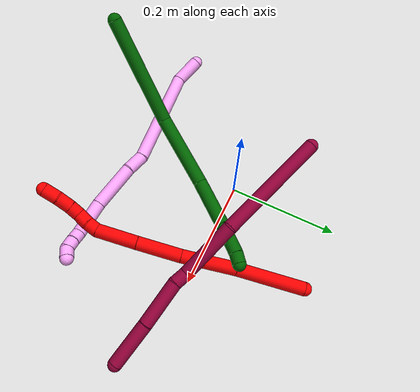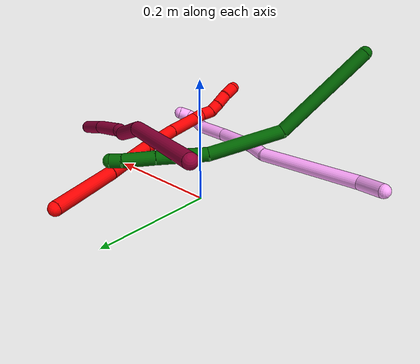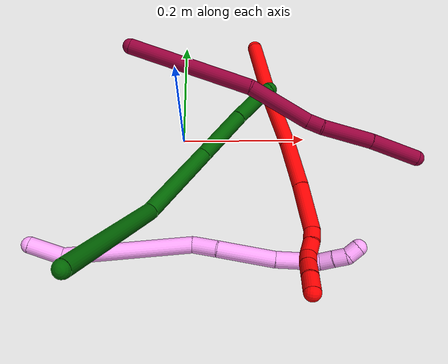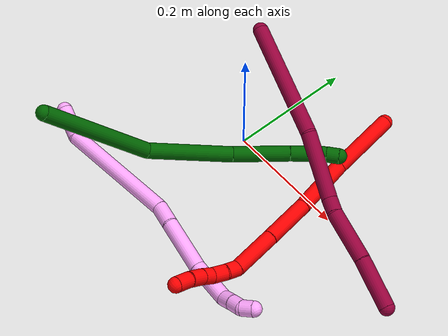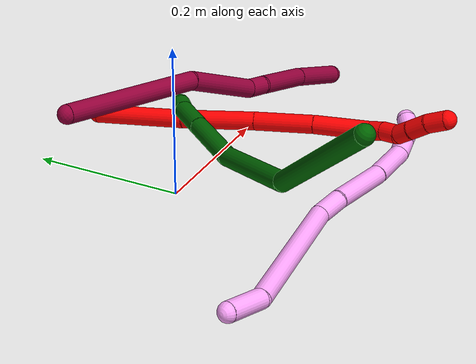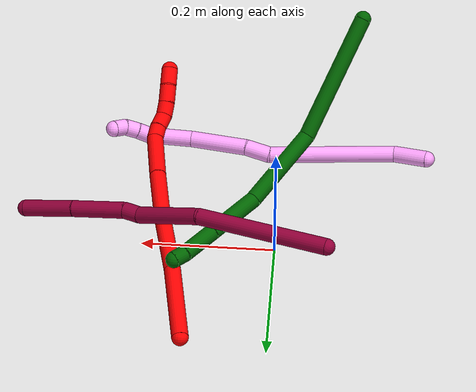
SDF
<sdf version="1.7">
 <world name="default">
  <model name="photoneo_s_sensor">
   <static>1</static>
   <pose>0 0 2 1.57079 1.57079 3.14159</pose>
   <link name="link">
    <inertial><mass>0.1</mass></inertial>
    <sensor name="sensor" type="depth">
     <update_rate>30</update_rate>
     <camera>
      <horizontal_fov>1.22</horizontal_fov>
      <image><width>1920</width><height>1200</height><format>B8G8R8</format></image>
      <clip><near>0.1</near><far>4</far></clip>
      <depth_camera><output>points</output></depth_camera>
     </camera>
     <plugin name="camera_plugin" filename="libgazebo_ros_depth_camera.so">
      <baseline>0.2</baseline>
      <alwaysOn>1</alwaysOn>
      <updateRate>0.0</updateRate>
      <cameraName>camera_ir</cameraName>
      <imageTopicName>/camera/color/image_raw</imageTopicName>
      <cameraInfoTopicName>/camera/color/camera_info</cameraInfoTopicName>
      <depthImageTopicName>/camera/depth/image_raw</depthImageTopicName>
      <depthImageCameraInfoTopicName>/camera/depth/camera_info</depthImageCameraInfoTopicName>
      <pointCloudTopicName>/camera/depth/points</pointCloudTopicName>
      <frameName>fr_optical</frameName>
      <pointCloudCutoff>0.1</pointCloudCutoff>
      <pointCloudCutoffMax>2.0</pointCloudCutoffMax>
      <distortionK1>0</distortionK1>
      <distortionK2>0</distortionK2>
      <distortionK3>0</distortionK3>
      <distortionT1>0</distortionT1>
      <distortionT2>0</distortionT2>
      <CxPrime>0</CxPrime>
      <Cx>0</Cx>
      <Cy>0</Cy>
      <focalLength>0</focalLength>
      <hackBaseline>0</hackBaseline>
     </plugin>
    </sensor>
   </link>
  </model>
  <model name="bin">
   <static>1</static>
   <link name="bottom">
    <collision name="collision-bottom">
     <pose>0 0 -0.01 0 -0 0</pose>
     <geometry><box><size>0.8 0.6 0.02</size></box></geometry>
     <surface>
      <friction><ode><mu>100</mu><mu2>100</mu2></ode></friction>
      <contact><collide_bitmask>65535</collide_bitmask></contact>
     </surface>
    </collision>
   </link>
   <link name="west_wall">
    <collision name="collision-west_wall">
     <pose>-0.41 0 0.1 0 -0 0</pose>
     <geometry><box><size>0.02 0.6 0.2</size></box></geometry>
     <surface>
      <friction><ode><mu>100</mu><mu2>100</mu2></ode></friction>
      <contact><collide_bitmask>65535</collide_bitmask></contact>
     </surface>
    </collision>
   </link>
   <link name="east_wall">
    <collision name="collision-east_wall">
     <pose>0.41 0 0.1 0 -0 0</pose>
     <geometry><box><size>0.02 0.6 0.2</size></box></geometry>
     <surface>
      <friction><ode><mu>100</mu><mu2>100</mu2></ode></friction>
      <contact><collide_bitmask>65535</collide_bitmask></contact>
     </surface>
    </collision>
   </link>
   <link name="south_wall">
    <collision name="collision-south_wall">
     <pose>0 -0.31 0.1 0 -0 0</pose>
     <geometry><box><size>0.8 0.02 0.2</size></box></geometry>
     <surface>
      <friction><ode><mu>100</mu><mu2>100</mu2></ode></friction>
      <contact><collide_bitmask>65535</collide_bitmask></contact>
     </surface>
    </collision>
   </link>
   <link name="north_wall">
    <collision name="collision-north_wall">
     <pose>0 0.31 0.1 0 -0 0</pose>
     <geometry><box><size>0.8 0.02 0.2</size></box></geometry>
     <surface>
      <friction><ode><mu>100</mu><mu2>100</mu2></ode></friction>
      <contact><collide_bitmask>65535</collide_bitmask></contact>
     </surface>
    </collision>
   </link>
  </model>
  <model name="2">
   <static>0</static>
   <link name="2">
    <collision name="collision-cylinder-e_1_1_4">
     <pose>0.000698 -0.058525 -0.019623 1.89431 0.011301 0.015709</pose>
     <geometry><cylinder><radius>0.0125</radius><length>0.123461</length></cylinder></geometry>
     <surface>
      <friction><ode><mu>1.16</mu><mu2>1.16</mu2><slip1>0</slip1><slip2>0</slip2></ode></friction>
      <contact><ode><kp>1e+06</kp><kd>1</kd><max_vel>0</max_vel><min_depth>0.001</min_depth></ode></contact>
     </surface>
    </collision>
    <visual name="visual-cylinder-e_1_1_4">
     <pose>0.000698 -0.058525 -0.019623 1.89431 0.011301 0.015709</pose>
     <geometry><cylinder><radius>0.0125</radius><length>0.123461</length></cylinder></geometry>
     <material><ambient>1 0 0 1</ambient></material>
    </visual>
    <collision name="collision-cylinder-e_2_4_5">
     <pose>0.002526 -0.163512 -0.058023 1.95486 0.022559 0.033446</pose>
     <geometry><cylinder><radius>0.0125</radius><length>0.100253</length></cylinder></geometry>
     <surface>
      <friction><ode><mu>1.16</mu><mu2>1.16</mu2><slip1>0</slip1><slip2>0</slip2></ode></friction>
      <contact><ode><kp>1e+06</kp><kd>1</kd><max_vel>0</max_vel><min_depth>0.001</min_depth></ode></contact>
     </surface>
    </collision>
    <visual name="visual-cylinder-e_2_4_5">
     <pose>0.002526 -0.163512 -0.058023 1.95486 0.022559 0.033446</pose>
     <geometry><cylinder><radius>0.0125</radius><length>0.100253</length></cylinder></geometry>
     <material><ambient>1 0 0 1</ambient></material>
    </visual>
    <collision name="collision-cylinder-e_3_5_6">
     <pose>0.004439 -0.248471 -0.089668 1.89338 0.019264 0.026751</pose>
     <geometry><cylinder><radius>0.0125</radius><length>0.081194</length></cylinder></geometry>
     <surface>
      <friction><ode><mu>1.16</mu><mu2>1.16</mu2><slip1>0</slip1><slip2>0</slip2></ode></friction>
      <contact><ode><kp>1e+06</kp><kd>1</kd><max_vel>0</max_vel><min_depth>0.001</min_depth></ode></contact>
     </surface>
    </collision>
    <visual name="visual-cylinder-e_3_5_6">
     <pose>0.004439 -0.248471 -0.089668 1.89338 0.019264 0.026751</pose>
     <geometry><cylinder><radius>0.0125</radius><length>0.081194</length></cylinder></geometry>
     <material><ambient>1 0 0 1</ambient></material>
    </visual>
    <collision name="collision-cylinder-e_4_6_7">
     <pose>0.00422 -0.323212 -0.113584 1.86669 -0.026402 -0.035647</pose>
     <geometry><cylinder><radius>0.0125</radius><length>0.07581</length></cylinder></geometry>
     <surface>
      <friction><ode><mu>1.16</mu><mu2>1.16</mu2><slip1>0</slip1><slip2>0</slip2></ode></friction>
      <contact><ode><kp>1e+06</kp><kd>1</kd><max_vel>0</max_vel><min_depth>0.001</min_depth></ode></contact>
     </surface>
    </collision>
    <visual name="visual-cylinder-e_4_6_7">
     <pose>0.00422 -0.323212 -0.113584 1.86669 -0.026402 -0.035647</pose>
     <geometry><cylinder><radius>0.0125</radius><length>0.07581</length></cylinder></geometry>
     <material><ambient>1 0 0 1</ambient></material>
    </visual>
    <collision name="collision-cylinder-e_5_7_8">
     <pose>0.00509 -0.369381 -0.124536 1.56101 0.18626 0.184456</pose>
     <geometry><cylinder><radius>0.0125</radius><length>0.020198</length></cylinder></geometry>
     <surface>
      <friction><ode><mu>1.16</mu><mu2>1.16</mu2><slip1>0</slip1><slip2>0</slip2></ode></friction>
      <contact><ode><kp>1e+06</kp><kd>1</kd><max_vel>0</max_vel><min_depth>0.001</min_depth></ode></contact>
     </surface>
    </collision>
    <visual name="visual-cylinder-e_5_7_8">
     <pose>0.00509 -0.369381 -0.124536 1.56101 0.18626 0.184456</pose>
     <geometry><cylinder><radius>0.0125</radius><length>0.020198</length></cylinder></geometry>
     <material><ambient>1 0 0 1</ambient></material>
    </visual>
    <collision name="collision-cylinder-e_6_8_9">
     <pose>0.007862 -0.390847 -0.122476 1.40233 0.076891 0.064927</pose>
     <geometry><cylinder><radius>0.0125</radius><length>0.023484</length></cylinder></geometry>
     <surface>
      <friction><ode><mu>1.16</mu><mu2>1.16</mu2><slip1>0</slip1><slip2>0</slip2></ode></friction>
      <contact><ode><kp>1e+06</kp><kd>1</kd><max_vel>0</max_vel><min_depth>0.001</min_depth></ode></contact>
     </surface>
    </collision>
    <visual name="visual-cylinder-e_6_8_9">
     <pose>0.007862 -0.390847 -0.122476 1.40233 0.076891 0.064927</pose>
     <geometry><cylinder><radius>0.0125</radius><length>0.023484</length></cylinder></geometry>
     <material><ambient>1 0 0 1</ambient></material>
    </visual>
    <collision name="collision-cylinder-e_7_9_10">
     <pose>0.013982 -0.411724 -0.120355 1.55391 0.509667 0.501486</pose>
     <geometry><cylinder><radius>0.0125</radius><length>0.021393</length></cylinder></geometry>
     <surface>
      <friction><ode><mu>1.16</mu><mu2>1.16</mu2><slip1>0</slip1><slip2>0</slip2></ode></friction>
      <contact><ode><kp>1e+06</kp><kd>1</kd><max_vel>0</max_vel><min_depth>0.001</min_depth></ode></contact>
     </surface>
    </collision>
    <visual name="visual-cylinder-e_7_9_10">
     <pose>0.013982 -0.411724 -0.120355 1.55391 0.509667 0.501486</pose>
     <geometry><cylinder><radius>0.0125</radius><length>0.021393</length></cylinder></geometry>
     <material><ambient>1 0 0 1</ambient></material>
    </visual>
    <collision name="collision-cylinder-e_8_10_11">
     <pose>0.025794 -0.432784 -0.1213 1.6646 0.510369 0.558175</pose>
     <geometry><cylinder><radius>0.0125</radius><length>0.026991</length></cylinder></geometry>
     <surface>
      <friction><ode><mu>1.16</mu><mu2>1.16</mu2><slip1>0</slip1><slip2>0</slip2></ode></friction>
      <contact><ode><kp>1e+06</kp><kd>1</kd><max_vel>0</max_vel><min_depth>0.001</min_depth></ode></contact>
     </surface>
    </collision>
    <visual name="visual-cylinder-e_8_10_11">
     <pose>0.025794 -0.432784 -0.1213 1.6646 0.510369 0.558175</pose>
     <geometry><cylinder><radius>0.0125</radius><length>0.026991</length></cylinder></geometry>
     <material><ambient>1 0 0 1</ambient></material>
    </visual>
    <collision name="collision-cylinder-e_9_11_2">
     <pose>0.036899 -0.457243 -0.124016 1.69675 0.338035 0.382498</pose>
     <geometry><cylinder><radius>0.0125</radius><length>0.027215</length></cylinder></geometry>
     <surface>
      <friction><ode><mu>1.16</mu><mu2>1.16</mu2><slip1>0</slip1><slip2>0</slip2></ode></friction>
      <contact><ode><kp>1e+06</kp><kd>1</kd><max_vel>0</max_vel><min_depth>0.001</min_depth></ode></contact>
     </surface>
    </collision>
    <visual name="visual-cylinder-e_9_11_2">
     <pose>0.036899 -0.457243 -0.124016 1.69675 0.338035 0.382498</pose>
     <geometry><cylinder><radius>0.0125</radius><length>0.027215</length></cylinder></geometry>
     <material><ambient>1 0 0 1</ambient></material>
    </visual>
    <collision name="collision-sphere-2">
     <pose>0.041412 -0.469979 -0.125629 0 -0 0</pose>
     <geometry><sphere><radius>0.0125</radius></sphere></geometry>
     <surface>
      <friction><ode><mu>1.16</mu><mu2>1.16</mu2><slip1>0</slip1><slip2>0</slip2></ode></friction>
      <contact><ode><kp>1e+06</kp><kd>1</kd><max_vel>0</max_vel><min_depth>0.001</min_depth></ode></contact>
     </surface>
    </collision>
    <visual name="visual-sphere-2">
     <pose>0.041412 -0.469979 -0.125629 0 -0 0</pose>
     <geometry><sphere><radius>0.0125</radius></sphere></geometry>
     <material><ambient>1 0 0 1</ambient></material>
    </visual>
    <collision name="collision-sphere-11">
     <pose>0.032386 -0.444508 -0.122403 0 -0 0</pose>
     <geometry><sphere><radius>0.0125</radius></sphere></geometry>
     <surface>
      <friction><ode><mu>1.16</mu><mu2>1.16</mu2><slip1>0</slip1><slip2>0</slip2></ode></friction>
      <contact><ode><kp>1e+06</kp><kd>1</kd><max_vel>0</max_vel><min_depth>0.001</min_depth></ode></contact>
     </surface>
    </collision>
    <visual name="visual-sphere-11">
     <pose>0.032386 -0.444508 -0.122403 0 -0 0</pose>
     <geometry><sphere><radius>0.0125</radius></sphere></geometry>
     <material><ambient>1 0 0 1</ambient></material>
    </visual>
    <collision name="collision-sphere-10">
     <pose>0.019201 -0.42106 -0.120197 0 -0 0</pose>
     <geometry><sphere><radius>0.0125</radius></sphere></geometry>
     <surface>
      <friction><ode><mu>1.16</mu><mu2>1.16</mu2><slip1>0</slip1><slip2>0</slip2></ode></friction>
      <contact><ode><kp>1e+06</kp><kd>1</kd><max_vel>0</max_vel><min_depth>0.001</min_depth></ode></contact>
     </surface>
    </collision>
    <visual name="visual-sphere-10">
     <pose>0.019201 -0.42106 -0.120197 0 -0 0</pose>
     <geometry><sphere><radius>0.0125</radius></sphere></geometry>
     <material><ambient>1 0 0 1</ambient></material>
    </visual>
    <collision name="collision-sphere-9">
     <pose>0.008764 -0.402389 -0.120513 0 -0 0</pose>
     <geometry><sphere><radius>0.0125</radius></sphere></geometry>
     <surface>
      <friction><ode><mu>1.16</mu><mu2>1.16</mu2><slip1>0</slip1><slip2>0</slip2></ode></friction>
      <contact><ode><kp>1e+06</kp><kd>1</kd><max_vel>0</max_vel><min_depth>0.001</min_depth></ode></contact>
     </surface>
    </collision>
    <visual name="visual-sphere-9">
     <pose>0.008764 -0.402389 -0.120513 0 -0 0</pose>
     <geometry><sphere><radius>0.0125</radius></sphere></geometry>
     <material><ambient>1 0 0 1</ambient></material>
    </visual>
    <collision name="collision-sphere-4">
     <pose>0.001395 -0.117049 -0.039245 0 -0 0</pose>
     <geometry><sphere><radius>0.0125</radius></sphere></geometry>
     <surface>
      <friction><ode><mu>1.16</mu><mu2>1.16</mu2><slip1>0</slip1><slip2>0</slip2></ode></friction>
      <contact><ode><kp>1e+06</kp><kd>1</kd><max_vel>0</max_vel><min_depth>0.001</min_depth></ode></contact>
     </surface>
    </collision>
    <visual name="visual-sphere-4">
     <pose>0.001395 -0.117049 -0.039245 0 -0 0</pose>
     <geometry><sphere><radius>0.0125</radius></sphere></geometry>
     <material><ambient>1 0 0 1</ambient></material>
    </visual>
    <collision name="collision-sphere-1">
     <geometry><sphere><radius>0.0125</radius></sphere></geometry>
     <surface>
      <friction><ode><mu>1.16</mu><mu2>1.16</mu2><slip1>0</slip1><slip2>0</slip2></ode></friction>
      <contact><ode><kp>1e+06</kp><kd>1</kd><max_vel>0</max_vel><min_depth>0.001</min_depth></ode></contact>
     </surface>
    </collision>
    <visual name="visual-sphere-1">
     <geometry><sphere><radius>0.0125</radius></sphere></geometry>
     <material><ambient>1 0 0 1</ambient></material>
    </visual>
    <collision name="collision-sphere-8">
     <pose>0.00696 -0.379305 -0.124439 0 -0 0</pose>
     <geometry><sphere><radius>0.0125</radius></sphere></geometry>
     <surface>
      <friction><ode><mu>1.16</mu><mu2>1.16</mu2><slip1>0</slip1><slip2>0</slip2></ode></friction>
      <contact><ode><kp>1e+06</kp><kd>1</kd><max_vel>0</max_vel><min_depth>0.001</min_depth></ode></contact>
     </surface>
    </collision>
    <visual name="visual-sphere-8">
     <pose>0.00696 -0.379305 -0.124439 0 -0 0</pose>
     <geometry><sphere><radius>0.0125</radius></sphere></geometry>
     <material><ambient>1 0 0 1</ambient></material>
    </visual>
    <collision name="collision-sphere-5">
     <pose>0.003657 -0.209975 -0.0768 0 -0 0</pose>
     <geometry><sphere><radius>0.0125</radius></sphere></geometry>
     <surface>
      <friction><ode><mu>1.16</mu><mu2>1.16</mu2><slip1>0</slip1><slip2>0</slip2></ode></friction>
      <contact><ode><kp>1e+06</kp><kd>1</kd><max_vel>0</max_vel><min_depth>0.001</min_depth></ode></contact>
     </surface>
    </collision>
    <visual name="visual-sphere-5">
     <pose>0.003657 -0.209975 -0.0768 0 -0 0</pose>
     <geometry><sphere><radius>0.0125</radius></sphere></geometry>
     <material><ambient>1 0 0 1</ambient></material>
    </visual>
    <collision name="collision-sphere-6">
     <pose>0.005221 -0.286967 -0.102535 0 -0 0</pose>
     <geometry><sphere><radius>0.0125</radius></sphere></geometry>
     <surface>
      <friction><ode><mu>1.16</mu><mu2>1.16</mu2><slip1>0</slip1><slip2>0</slip2></ode></friction>
      <contact><ode><kp>1e+06</kp><kd>1</kd><max_vel>0</max_vel><min_depth>0.001</min_depth></ode></contact>
     </surface>
    </collision>
    <visual name="visual-sphere-6">
     <pose>0.005221 -0.286967 -0.102535 0 -0 0</pose>
     <geometry><sphere><radius>0.0125</radius></sphere></geometry>
     <material><ambient>1 0 0 1</ambient></material>
    </visual>
    <collision name="collision-sphere-7">
     <pose>0.003219 -0.359457 -0.124633 0 -0 0</pose>
     <geometry><sphere><radius>0.0125</radius></sphere></geometry>
     <surface>
      <friction><ode><mu>1.16</mu><mu2>1.16</mu2><slip1>0</slip1><slip2>0</slip2></ode></friction>
      <contact><ode><kp>1e+06</kp><kd>1</kd><max_vel>0</max_vel><min_depth>0.001</min_depth></ode></contact>
     </surface>
    </collision>
    <visual name="visual-sphere-7">
     <pose>0.003219 -0.359457 -0.124633 0 -0 0</pose>
     <geometry><sphere><radius>0.0125</radius></sphere></geometry>
     <material><ambient>1 0 0 1</ambient></material>
    </visual>
    <inertial>
     <pose>0.006613 -0.235736 -0.077493 0 -0 0</pose>
     <mass>0.5</mass>
     <inertia>
      <ixx>0.000357</ixx>
      <ixy>0</ixy>
      <ixz>0</ixz>
      <iyy>-0.000137</iyy>
      <iyz>0</iyz>
      <izz>0.00031</izz>
     </inertia>
    </inertial>
   </link>
   <pose>0.124942 0.19083 0.01243 -1.29265 -1.48587 1.14385</pose>
  </model>
  <model name="4">
   <static>0</static>
   <link name="4">
    <collision name="collision-cylinder-e_1_1_4">
     <pose>0.000594 0.002263 0.026253 -0.085987 0.022534 -0.000969</pose>
     <geometry><cylinder><radius>0.0125</radius><length>0.052714</length></cylinder></geometry>
     <surface>
      <friction><ode><mu>1.16</mu><mu2>1.16</mu2><slip1>0</slip1><slip2>0</slip2></ode></friction>
      <contact><ode><kp>1e+06</kp><kd>1</kd><max_vel>0</max_vel><min_depth>0.001</min_depth></ode></contact>
     </surface>
    </collision>
    <visual name="visual-cylinder-e_1_1_4">
     <pose>0.000594 0.002263 0.026253 -0.085987 0.022534 -0.000969</pose>
     <geometry><cylinder><radius>0.0125</radius><length>0.052714</length></cylinder></geometry>
     <material><ambient>1 0.65098 0.996078 1</ambient></material>
    </visual>
    <collision name="collision-cylinder-e_2_4_5">
     <pose>0.014272 -0.024214 0.143864 0.304784 0.135776 0.020884</pose>
     <geometry><cylinder><radius>0.0125</radius><length>0.193323</length></cylinder></geometry>
     <surface>
      <friction><ode><mu>1.16</mu><mu2>1.16</mu2><slip1>0</slip1><slip2>0</slip2></ode></friction>
      <contact><ode><kp>1e+06</kp><kd>1</kd><max_vel>0</max_vel><min_depth>0.001</min_depth></ode></contact>
     </surface>
    </collision>
    <visual name="visual-cylinder-e_2_4_5">
     <pose>0.014272 -0.024214 0.143864 0.304784 0.135776 0.020884</pose>
     <geometry><cylinder><radius>0.0125</radius><length>0.193323</length></cylinder></geometry>
     <material><ambient>1 0.65098 0.996078 1</ambient></material>
    </visual>
    <collision name="collision-cylinder-e_3_5_6">
     <pose>0.032724 -0.052778 0.253431 -0.009684 0.286677 -0.001398</pose>
     <geometry><cylinder><radius>0.0125</radius><length>0.037969</length></cylinder></geometry>
     <surface>
      <friction><ode><mu>1.16</mu><mu2>1.16</mu2><slip1>0</slip1><slip2>0</slip2></ode></friction>
      <contact><ode><kp>1e+06</kp><kd>1</kd><max_vel>0</max_vel><min_depth>0.001</min_depth></ode></contact>
     </surface>
    </collision>
    <visual name="visual-cylinder-e_3_5_6">
     <pose>0.032724 -0.052778 0.253431 -0.009684 0.286677 -0.001398</pose>
     <geometry><cylinder><radius>0.0125</radius><length>0.037969</length></cylinder></geometry>
     <material><ambient>1 0.65098 0.996078 1</ambient></material>
    </visual>
    <collision name="collision-cylinder-e_4_6_7">
     <pose>0.04321 -0.053935 0.315125 0.030655 0.117092 0.001797</pose>
     <geometry><cylinder><radius>0.0125</radius><length>0.08761</length></cylinder></geometry>
     <surface>
      <friction><ode><mu>1.16</mu><mu2>1.16</mu2><slip1>0</slip1><slip2>0</slip2></ode></friction>
      <contact><ode><kp>1e+06</kp><kd>1</kd><max_vel>0</max_vel><min_depth>0.001</min_depth></ode></contact>
     </surface>
    </collision>
    <visual name="visual-cylinder-e_4_6_7">
     <pose>0.04321 -0.053935 0.315125 0.030655 0.117092 0.001797</pose>
     <geometry><cylinder><radius>0.0125</radius><length>0.08761</length></cylinder></geometry>
     <material><ambient>1 0.65098 0.996078 1</ambient></material>
    </visual>
    <collision name="collision-cylinder-e_5_7_8">
     <pose>0.05296 -0.060476 0.390929 0.159757 0.140571 0.011271</pose>
     <geometry><cylinder><radius>0.0125</radius><length>0.066126</length></cylinder></geometry>
     <surface>
      <friction><ode><mu>1.16</mu><mu2>1.16</mu2><slip1>0</slip1><slip2>0</slip2></ode></friction>
      <contact><ode><kp>1e+06</kp><kd>1</kd><max_vel>0</max_vel><min_depth>0.001</min_depth></ode></contact>
     </surface>
    </collision>
    <visual name="visual-cylinder-e_5_7_8">
     <pose>0.05296 -0.060476 0.390929 0.159757 0.140571 0.011271</pose>
     <geometry><cylinder><radius>0.0125</radius><length>0.066126</length></cylinder></geometry>
     <material><ambient>1 0.65098 0.996078 1</ambient></material>
    </visual>
    <collision name="collision-cylinder-e_6_8_9">
     <pose>0.063799 -0.068554 0.431686 0.327988 0.608337 0.103798</pose>
     <geometry><cylinder><radius>0.0125</radius><length>0.02172</length></cylinder></geometry>
     <surface>
      <friction><ode><mu>1.16</mu><mu2>1.16</mu2><slip1>0</slip1><slip2>0</slip2></ode></friction>
      <contact><ode><kp>1e+06</kp><kd>1</kd><max_vel>0</max_vel><min_depth>0.001</min_depth></ode></contact>
     </surface>
    </collision>
    <visual name="visual-cylinder-e_6_8_9">
     <pose>0.063799 -0.068554 0.431686 0.327988 0.608337 0.103798</pose>
     <geometry><cylinder><radius>0.0125</radius><length>0.02172</length></cylinder></geometry>
     <material><ambient>1 0.65098 0.996078 1</ambient></material>
    </visual>
    <collision name="collision-cylinder-e_7_9_10">
     <pose>0.074913 -0.074265 0.448544 0.325218 0.504553 0.084527</pose>
     <geometry><cylinder><radius>0.0125</radius><length>0.020305</length></cylinder></geometry>
     <surface>
      <friction><ode><mu>1.16</mu><mu2>1.16</mu2><slip1>0</slip1><slip2>0</slip2></ode></friction>
      <contact><ode><kp>1e+06</kp><kd>1</kd><max_vel>0</max_vel><min_depth>0.001</min_depth></ode></contact>
     </surface>
    </collision>
    <visual name="visual-cylinder-e_7_9_10">
     <pose>0.074913 -0.074265 0.448544 0.325218 0.504553 0.084527</pose>
     <geometry><cylinder><radius>0.0125</radius><length>0.020305</length></cylinder></geometry>
     <material><ambient>1 0.65098 0.996078 1</ambient></material>
    </visual>
    <collision name="collision-cylinder-e_8_10_2">
     <pose>0.083243 -0.084331 0.463163 0.861881 0.345037 0.159885</pose>
     <geometry><cylinder><radius>0.0125</radius><length>0.020232</length></cylinder></geometry>
     <surface>
      <friction><ode><mu>1.16</mu><mu2>1.16</mu2><slip1>0</slip1><slip2>0</slip2></ode></friction>
      <contact><ode><kp>1e+06</kp><kd>1</kd><max_vel>0</max_vel><min_depth>0.001</min_depth></ode></contact>
     </surface>
    </collision>
    <visual name="visual-cylinder-e_8_10_2">
     <pose>0.083243 -0.084331 0.463163 0.861881 0.345037 0.159885</pose>
     <geometry><cylinder><radius>0.0125</radius><length>0.020232</length></cylinder></geometry>
     <material><ambient>1 0.65098 0.996078 1</ambient></material>
    </visual>
    <collision name="collision-sphere-2">
     <pose>0.086664 -0.091557 0.469361 0 -0 0</pose>
     <geometry><sphere><radius>0.0125</radius></sphere></geometry>
     <surface>
      <friction><ode><mu>1.16</mu><mu2>1.16</mu2><slip1>0</slip1><slip2>0</slip2></ode></friction>
      <contact><ode><kp>1e+06</kp><kd>1</kd><max_vel>0</max_vel><min_depth>0.001</min_depth></ode></contact>
     </surface>
    </collision>
    <visual name="visual-sphere-2">
     <pose>0.086664 -0.091557 0.469361 0 -0 0</pose>
     <geometry><sphere><radius>0.0125</radius></sphere></geometry>
     <material><ambient>1 0.65098 0.996078 1</ambient></material>
    </visual>
    <collision name="collision-sphere-10">
     <pose>0.079821 -0.077105 0.456966 0 -0 0</pose>
     <geometry><sphere><radius>0.0125</radius></sphere></geometry>
     <surface>
      <friction><ode><mu>1.16</mu><mu2>1.16</mu2><slip1>0</slip1><slip2>0</slip2></ode></friction>
      <contact><ode><kp>1e+06</kp><kd>1</kd><max_vel>0</max_vel><min_depth>0.001</min_depth></ode></contact>
     </surface>
    </collision>
    <visual name="visual-sphere-10">
     <pose>0.079821 -0.077105 0.456966 0 -0 0</pose>
     <geometry><sphere><radius>0.0125</radius></sphere></geometry>
     <material><ambient>1 0.65098 0.996078 1</ambient></material>
    </visual>
    <collision name="collision-sphere-9">
     <pose>0.070006 -0.071425 0.440123 0 -0 0</pose>
     <geometry><sphere><radius>0.0125</radius></sphere></geometry>
     <surface>
      <friction><ode><mu>1.16</mu><mu2>1.16</mu2><slip1>0</slip1><slip2>0</slip2></ode></friction>
      <contact><ode><kp>1e+06</kp><kd>1</kd><max_vel>0</max_vel><min_depth>0.001</min_depth></ode></contact>
     </surface>
    </collision>
    <visual name="visual-sphere-9">
     <pose>0.070006 -0.071425 0.440123 0 -0 0</pose>
     <geometry><sphere><radius>0.0125</radius></sphere></geometry>
     <material><ambient>1 0.65098 0.996078 1</ambient></material>
    </visual>
    <collision name="collision-sphere-4">
     <pose>0.001188 0.004526 0.052506 0 -0 0</pose>
     <geometry><sphere><radius>0.0125</radius></sphere></geometry>
     <surface>
      <friction><ode><mu>1.16</mu><mu2>1.16</mu2><slip1>0</slip1><slip2>0</slip2></ode></friction>
      <contact><ode><kp>1e+06</kp><kd>1</kd><max_vel>0</max_vel><min_depth>0.001</min_depth></ode></contact>
     </surface>
    </collision>
    <visual name="visual-sphere-4">
     <pose>0.001188 0.004526 0.052506 0 -0 0</pose>
     <geometry><sphere><radius>0.0125</radius></sphere></geometry>
     <material><ambient>1 0.65098 0.996078 1</ambient></material>
    </visual>
    <collision name="collision-sphere-1">
     <geometry><sphere><radius>0.0125</radius></sphere></geometry>
     <surface>
      <friction><ode><mu>1.16</mu><mu2>1.16</mu2><slip1>0</slip1><slip2>0</slip2></ode></friction>
      <contact><ode><kp>1e+06</kp><kd>1</kd><max_vel>0</max_vel><min_depth>0.001</min_depth></ode></contact>
     </surface>
    </collision>
    <visual name="visual-sphere-1">
     <geometry><sphere><radius>0.0125</radius></sphere></geometry>
     <material><ambient>1 0.65098 0.996078 1</ambient></material>
    </visual>
    <collision name="collision-sphere-8">
     <pose>0.057592 -0.065684 0.423249 0 -0 0</pose>
     <geometry><sphere><radius>0.0125</radius></sphere></geometry>
     <surface>
      <friction><ode><mu>1.16</mu><mu2>1.16</mu2><slip1>0</slip1><slip2>0</slip2></ode></friction>
      <contact><ode><kp>1e+06</kp><kd>1</kd><max_vel>0</max_vel><min_depth>0.001</min_depth></ode></contact>
     </surface>
    </collision>
    <visual name="visual-sphere-8">
     <pose>0.057592 -0.065684 0.423249 0 -0 0</pose>
     <geometry><sphere><radius>0.0125</radius></sphere></geometry>
     <material><ambient>1 0.65098 0.996078 1</ambient></material>
    </visual>
    <collision name="collision-sphere-5">
     <pose>0.027356 -0.052954 0.235222 0 -0 0</pose>
     <geometry><sphere><radius>0.0125</radius></sphere></geometry>
     <surface>
      <friction><ode><mu>1.16</mu><mu2>1.16</mu2><slip1>0</slip1><slip2>0</slip2></ode></friction>
      <contact><ode><kp>1e+06</kp><kd>1</kd><max_vel>0</max_vel><min_depth>0.001</min_depth></ode></contact>
     </surface>
    </collision>
    <visual name="visual-sphere-5">
     <pose>0.027356 -0.052954 0.235222 0 -0 0</pose>
     <geometry><sphere><radius>0.0125</radius></sphere></geometry>
     <material><ambient>1 0.65098 0.996078 1</ambient></material>
    </visual>
    <collision name="collision-sphere-6">
     <pose>0.038092 -0.052601 0.27164 0 -0 0</pose>
     <geometry><sphere><radius>0.0125</radius></sphere></geometry>
     <surface>
      <friction><ode><mu>1.16</mu><mu2>1.16</mu2><slip1>0</slip1><slip2>0</slip2></ode></friction>
      <contact><ode><kp>1e+06</kp><kd>1</kd><max_vel>0</max_vel><min_depth>0.001</min_depth></ode></contact>
     </surface>
    </collision>
    <visual name="visual-sphere-6">
     <pose>0.038092 -0.052601 0.27164 0 -0 0</pose>
     <geometry><sphere><radius>0.0125</radius></sphere></geometry>
     <material><ambient>1 0.65098 0.996078 1</ambient></material>
    </visual>
    <collision name="collision-sphere-7">
     <pose>0.048327 -0.055268 0.358609 0 -0 0</pose>
     <geometry><sphere><radius>0.0125</radius></sphere></geometry>
     <surface>
      <friction><ode><mu>1.16</mu><mu2>1.16</mu2><slip1>0</slip1><slip2>0</slip2></ode></friction>
      <contact><ode><kp>1e+06</kp><kd>1</kd><max_vel>0</max_vel><min_depth>0.001</min_depth></ode></contact>
     </surface>
    </collision>
    <visual name="visual-sphere-7">
     <pose>0.048327 -0.055268 0.358609 0 -0 0</pose>
     <geometry><sphere><radius>0.0125</radius></sphere></geometry>
     <material><ambient>1 0.65098 0.996078 1</ambient></material>
    </visual>
    <inertial>
     <pose>0.031823 -0.039986 0.240264 0 -0 0</pose>
     <mass>0.5</mass>
     <inertia>
      <ixx>0.000734</ixx>
      <ixy>0</ixy>
      <ixz>0</ixz>
      <iyy>0.000698</iyy>
      <iyz>0</iyz>
      <izz>0.000127</izz>
     </inertia>
    </inertial>
   </link>
   <pose>-0.223674 -0.189588 0.019838 -2.74199 -1.39168 -0.615807</pose>
  </model>
  <model name="6">
   <static>0</static>
   <link name="6">
    <collision name="collision-cylinder-e_1_1_4">
     <pose>0.030067 0.026512 -0.089869 -2.85472 0.310511 -1.65109</pose>
     <geometry><cylinder><radius>0.0125</radius><length>0.196808</length></cylinder></geometry>
     <surface>
      <friction><ode><mu>1.16</mu><mu2>1.16</mu2><slip1>0</slip1><slip2>0</slip2></ode></friction>
      <contact><ode><kp>1e+06</kp><kd>1</kd><max_vel>0</max_vel><min_depth>0.001</min_depth></ode></contact>
     </surface>
    </collision>
    <visual name="visual-cylinder-e_1_1_4">
     <pose>0.030067 0.026512 -0.089869 -2.85472 0.310511 -1.65109</pose>
     <geometry><cylinder><radius>0.0125</radius><length>0.196808</length></cylinder></geometry>
     <material><ambient>0 0.392157 0.003922 1</ambient></material>
    </visual>
    <collision name="collision-cylinder-e_2_4_5">
     <pose>0.092263 0.095509 -0.222199 -2.35591 0.491169 -1.08798</pose>
     <geometry><cylinder><radius>0.0125</radius><length>0.136239</length></cylinder></geometry>
     <surface>
      <friction><ode><mu>1.16</mu><mu2>1.16</mu2><slip1>0</slip1><slip2>0</slip2></ode></friction>
      <contact><ode><kp>1e+06</kp><kd>1</kd><max_vel>0</max_vel><min_depth>0.001</min_depth></ode></contact>
     </surface>
    </collision>
    <visual name="visual-cylinder-e_2_4_5">
     <pose>0.092263 0.095509 -0.222199 -2.35591 0.491169 -1.08798</pose>
     <geometry><cylinder><radius>0.0125</radius><length>0.136239</length></cylinder></geometry>
     <material><ambient>0 0.392157 0.003922 1</ambient></material>
    </visual>
    <collision name="collision-cylinder-e_3_5_6">
     <pose>0.149794 0.169714 -0.283913 -2.11631 0.600315 -1.00556</pose>
     <geometry><cylinder><radius>0.0125</radius><length>0.089934</length></cylinder></geometry>
     <surface>
      <friction><ode><mu>1.16</mu><mu2>1.16</mu2><slip1>0</slip1><slip2>0</slip2></ode></friction>
      <contact><ode><kp>1e+06</kp><kd>1</kd><max_vel>0</max_vel><min_depth>0.001</min_depth></ode></contact>
     </surface>
    </collision>
    <visual name="visual-cylinder-e_3_5_6">
     <pose>0.149794 0.169714 -0.283913 -2.11631 0.600315 -1.00556</pose>
     <geometry><cylinder><radius>0.0125</radius><length>0.089934</length></cylinder></geometry>
     <material><ambient>0 0.392157 0.003922 1</ambient></material>
    </visual>
    <collision name="collision-cylinder-e_4_6_7">
     <pose>0.191695 0.220384 -0.315922 -2.16329 0.625518 -1.09184</pose>
     <geometry><cylinder><radius>0.0125</radius><length>0.056359</length></cylinder></geometry>
     <surface>
      <friction><ode><mu>1.16</mu><mu2>1.16</mu2><slip1>0</slip1><slip2>0</slip2></ode></friction>
      <contact><ode><kp>1e+06</kp><kd>1</kd><max_vel>0</max_vel><min_depth>0.001</min_depth></ode></contact>
     </surface>
    </collision>
    <visual name="visual-cylinder-e_4_6_7">
     <pose>0.191695 0.220384 -0.315922 -2.16329 0.625518 -1.09184</pose>
     <geometry><cylinder><radius>0.0125</radius><length>0.056359</length></cylinder></geometry>
     <material><ambient>0 0.392157 0.003922 1</ambient></material>
    </visual>
    <collision name="collision-cylinder-e_5_7_2">
     <pose>0.215547 0.245397 -0.332666 -2.15252 0.791936 -1.31895</pose>
     <geometry><cylinder><radius>0.0125</radius><length>0.020661</length></cylinder></geometry>
     <surface>
      <friction><ode><mu>1.16</mu><mu2>1.16</mu2><slip1>0</slip1><slip2>0</slip2></ode></friction>
      <contact><ode><kp>1e+06</kp><kd>1</kd><max_vel>0</max_vel><min_depth>0.001</min_depth></ode></contact>
     </surface>
    </collision>
    <visual name="visual-cylinder-e_5_7_2">
     <pose>0.215547 0.245397 -0.332666 -2.15252 0.791936 -1.31895</pose>
     <geometry><cylinder><radius>0.0125</radius><length>0.020661</length></cylinder></geometry>
     <material><ambient>0 0.392157 0.003922 1</ambient></material>
    </visual>
    <collision name="collision-sphere-2">
     <pose>0.222899 0.25146 -0.336653 0 -0 0</pose>
     <geometry><sphere><radius>0.0125</radius></sphere></geometry>
     <surface>
      <friction><ode><mu>1.16</mu><mu2>1.16</mu2><slip1>0</slip1><slip2>0</slip2></ode></friction>
      <contact><ode><kp>1e+06</kp><kd>1</kd><max_vel>0</max_vel><min_depth>0.001</min_depth></ode></contact>
     </surface>
    </collision>
    <visual name="visual-sphere-2">
     <pose>0.222899 0.25146 -0.336653 0 -0 0</pose>
     <geometry><sphere><radius>0.0125</radius></sphere></geometry>
     <material><ambient>0 0.392157 0.003922 1</ambient></material>
    </visual>
    <collision name="collision-sphere-7">
     <pose>0.208195 0.239334 -0.328679 0 -0 0</pose>
     <geometry><sphere><radius>0.0125</radius></sphere></geometry>
     <surface>
      <friction><ode><mu>1.16</mu><mu2>1.16</mu2><slip1>0</slip1><slip2>0</slip2></ode></friction>
      <contact><ode><kp>1e+06</kp><kd>1</kd><max_vel>0</max_vel><min_depth>0.001</min_depth></ode></contact>
     </surface>
    </collision>
    <visual name="visual-sphere-7">
     <pose>0.208195 0.239334 -0.328679 0 -0 0</pose>
     <geometry><sphere><radius>0.0125</radius></sphere></geometry>
     <material><ambient>0 0.392157 0.003922 1</ambient></material>
    </visual>
    <collision name="collision-sphere-6">
     <pose>0.175195 0.201434 -0.303165 0 -0 0</pose>
     <geometry><sphere><radius>0.0125</radius></sphere></geometry>
     <surface>
      <friction><ode><mu>1.16</mu><mu2>1.16</mu2><slip1>0</slip1><slip2>0</slip2></ode></friction>
      <contact><ode><kp>1e+06</kp><kd>1</kd><max_vel>0</max_vel><min_depth>0.001</min_depth></ode></contact>
     </surface>
    </collision>
    <visual name="visual-sphere-6">
     <pose>0.175195 0.201434 -0.303165 0 -0 0</pose>
     <geometry><sphere><radius>0.0125</radius></sphere></geometry>
     <material><ambient>0 0.392157 0.003922 1</ambient></material>
    </visual>
    <collision name="collision-sphere-5">
     <pose>0.124392 0.137995 -0.264661 0 -0 0</pose>
     <geometry><sphere><radius>0.0125</radius></sphere></geometry>
     <surface>
      <friction><ode><mu>1.16</mu><mu2>1.16</mu2><slip1>0</slip1><slip2>0</slip2></ode></friction>
      <contact><ode><kp>1e+06</kp><kd>1</kd><max_vel>0</max_vel><min_depth>0.001</min_depth></ode></contact>
     </surface>
    </collision>
    <visual name="visual-sphere-5">
     <pose>0.124392 0.137995 -0.264661 0 -0 0</pose>
     <geometry><sphere><radius>0.0125</radius></sphere></geometry>
     <material><ambient>0 0.392157 0.003922 1</ambient></material>
    </visual>
    <collision name="collision-sphere-1">
     <geometry><sphere><radius>0.0125</radius></sphere></geometry>
     <surface>
      <friction><ode><mu>1.16</mu><mu2>1.16</mu2><slip1>0</slip1><slip2>0</slip2></ode></friction>
      <contact><ode><kp>1e+06</kp><kd>1</kd><max_vel>0</max_vel><min_depth>0.001</min_depth></ode></contact>
     </surface>
    </collision>
    <visual name="visual-sphere-1">
     <geometry><sphere><radius>0.0125</radius></sphere></geometry>
     <material><ambient>0 0.392157 0.003922 1</ambient></material>
    </visual>
    <collision name="collision-sphere-4">
     <pose>0.060134 0.053024 -0.179738 0 -0 0</pose>
     <geometry><sphere><radius>0.0125</radius></sphere></geometry>
     <surface>
      <friction><ode><mu>1.16</mu><mu2>1.16</mu2><slip1>0</slip1><slip2>0</slip2></ode></friction>
      <contact><ode><kp>1e+06</kp><kd>1</kd><max_vel>0</max_vel><min_depth>0.001</min_depth></ode></contact>
     </surface>
    </collision>
    <visual name="visual-sphere-4">
     <pose>0.060134 0.053024 -0.179738 0 -0 0</pose>
     <geometry><sphere><radius>0.0125</radius></sphere></geometry>
     <material><ambient>0 0.392157 0.003922 1</ambient></material>
    </visual>
    <inertial>
     <pose>0.094431 0.101967 -0.196341 0 -0 0</pose>
     <mass>0.5</mass>
     <inertia>
      <ixx>-0.000745</ixx>
      <ixy>0</ixy>
      <ixz>0</ixz>
      <iyy>-0.000708</iyy>
      <iyz>0</iyz>
      <izz>-0.000738</izz>
     </inertia>
    </inertial>
   </link>
   <pose>-0.114328 -0.293289 0.209557 0.505378 -0.043969 -0.075084</pose>
  </model>
  <model name="8">
   <static>0</static>
   <link name="8">
    <collision name="collision-cylinder-e_1_1_4">
     <pose>0.055929 -0.051059 -0.066829 2.48917 0.586863 1.45805</pose>
     <geometry><cylinder><radius>0.0125</radius><length>0.202002</length></cylinder></geometry>
     <surface>
      <friction><ode><mu>1.16</mu><mu2>1.16</mu2><slip1>0</slip1><slip2>0</slip2></ode></friction>
      <contact><ode><kp>1e+06</kp><kd>1</kd><max_vel>0</max_vel><min_depth>0.001</min_depth></ode></contact>
     </surface>
    </collision>
    <visual name="visual-cylinder-e_1_1_4">
     <pose>0.055929 -0.051059 -0.066829 2.48917 0.586863 1.45805</pose>
     <geometry><cylinder><radius>0.0125</radius><length>0.202002</length></cylinder></geometry>
     <material><ambient>0.584314 0 0.227451 1</ambient></material>
    </visual>
    <collision name="collision-cylinder-e_2_4_5">
     <pose>0.13423 -0.119061 -0.179589 2.7882 0.428628 1.76751</pose>
     <geometry><cylinder><radius>0.0125</radius><length>0.107653</length></cylinder></geometry>
     <surface>
      <friction><ode><mu>1.16</mu><mu2>1.16</mu2><slip1>0</slip1><slip2>0</slip2></ode></friction>
      <contact><ode><kp>1e+06</kp><kd>1</kd><max_vel>0</max_vel><min_depth>0.001</min_depth></ode></contact>
     </surface>
    </collision>
    <visual name="visual-cylinder-e_2_4_5">
     <pose>0.13423 -0.119061 -0.179589 2.7882 0.428628 1.76751</pose>
     <geometry><cylinder><radius>0.0125</radius><length>0.107653</length></cylinder></geometry>
     <material><ambient>0.584314 0 0.227451 1</ambient></material>
    </visual>
    <collision name="collision-cylinder-e_3_5_6">
     <pose>0.162785 -0.143034 -0.233854 2.4409 0.51592 1.25069</pose>
     <geometry><cylinder><radius>0.0125</radius><length>0.025066</length></cylinder></geometry>
     <surface>
      <friction><ode><mu>1.16</mu><mu2>1.16</mu2><slip1>0</slip1><slip2>0</slip2></ode></friction>
      <contact><ode><kp>1e+06</kp><kd>1</kd><max_vel>0</max_vel><min_depth>0.001</min_depth></ode></contact>
     </surface>
    </collision>
    <visual name="visual-cylinder-e_3_5_6">
     <pose>0.162785 -0.143034 -0.233854 2.4409 0.51592 1.25069</pose>
     <geometry><cylinder><radius>0.0125</radius><length>0.025066</length></cylinder></geometry>
     <material><ambient>0.584314 0 0.227451 1</ambient></material>
    </visual>
    <collision name="collision-cylinder-e_4_6_7">
     <pose>0.194879 -0.164168 -0.271477 2.69279 0.672932 1.98524</pose>
     <geometry><cylinder><radius>0.0125</radius><length>0.083142</length></cylinder></geometry>
     <surface>
      <friction><ode><mu>1.16</mu><mu2>1.16</mu2><slip1>0</slip1><slip2>0</slip2></ode></friction>
      <contact><ode><kp>1e+06</kp><kd>1</kd><max_vel>0</max_vel><min_depth>0.001</min_depth></ode></contact>
     </surface>
    </collision>
    <visual name="visual-cylinder-e_4_6_7">
     <pose>0.194879 -0.164168 -0.271477 2.69279 0.672932 1.98524</pose>
     <geometry><cylinder><radius>0.0125</radius><length>0.083142</length></cylinder></geometry>
     <material><ambient>0.584314 0 0.227451 1</ambient></material>
    </visual>
    <collision name="collision-cylinder-e_5_7_2">
     <pose>0.243926 -0.191355 -0.332073 2.74577 0.598456 1.98876</pose>
     <geometry><cylinder><radius>0.0125</radius><length>0.082136</length></cylinder></geometry>
     <surface>
      <friction><ode><mu>1.16</mu><mu2>1.16</mu2><slip1>0</slip1><slip2>0</slip2></ode></friction>
      <contact><ode><kp>1e+06</kp><kd>1</kd><max_vel>0</max_vel><min_depth>0.001</min_depth></ode></contact>
     </surface>
    </collision>
    <visual name="visual-cylinder-e_5_7_2">
     <pose>0.243926 -0.191355 -0.332073 2.74577 0.598456 1.98876</pose>
     <geometry><cylinder><radius>0.0125</radius><length>0.082136</length></cylinder></geometry>
     <material><ambient>0.584314 0 0.227451 1</ambient></material>
    </visual>
    <collision name="collision-sphere-2">
     <pose>0.267062 -0.204438 -0.36338 0 -0 0</pose>
     <geometry><sphere><radius>0.0125</radius></sphere></geometry>
     <surface>
      <friction><ode><mu>1.16</mu><mu2>1.16</mu2><slip1>0</slip1><slip2>0</slip2></ode></friction>
      <contact><ode><kp>1e+06</kp><kd>1</kd><max_vel>0</max_vel><min_depth>0.001</min_depth></ode></contact>
     </surface>
    </collision>
    <visual name="visual-sphere-2">
     <pose>0.267062 -0.204438 -0.36338 0 -0 0</pose>
     <geometry><sphere><radius>0.0125</radius></sphere></geometry>
     <material><ambient>0.584314 0 0.227451 1</ambient></material>
    </visual>
    <collision name="collision-sphere-7">
     <pose>0.220789 -0.178273 -0.300766 0 -0 0</pose>
     <geometry><sphere><radius>0.0125</radius></sphere></geometry>
     <surface>
      <friction><ode><mu>1.16</mu><mu2>1.16</mu2><slip1>0</slip1><slip2>0</slip2></ode></friction>
      <contact><ode><kp>1e+06</kp><kd>1</kd><max_vel>0</max_vel><min_depth>0.001</min_depth></ode></contact>
     </surface>
    </collision>
    <visual name="visual-sphere-7">
     <pose>0.220789 -0.178273 -0.300766 0 -0 0</pose>
     <geometry><sphere><radius>0.0125</radius></sphere></geometry>
     <material><ambient>0.584314 0 0.227451 1</ambient></material>
    </visual>
    <collision name="collision-sphere-6">
     <pose>0.168968 -0.150062 -0.242188 0 -0 0</pose>
     <geometry><sphere><radius>0.0125</radius></sphere></geometry>
     <surface>
      <friction><ode><mu>1.16</mu><mu2>1.16</mu2><slip1>0</slip1><slip2>0</slip2></ode></friction>
      <contact><ode><kp>1e+06</kp><kd>1</kd><max_vel>0</max_vel><min_depth>0.001</min_depth></ode></contact>
     </surface>
    </collision>
    <visual name="visual-sphere-6">
     <pose>0.168968 -0.150062 -0.242188 0 -0 0</pose>
     <geometry><sphere><radius>0.0125</radius></sphere></geometry>
     <material><ambient>0.584314 0 0.227451 1</ambient></material>
    </visual>
    <collision name="collision-sphere-5">
     <pose>0.156602 -0.136005 -0.225521 0 -0 0</pose>
     <geometry><sphere><radius>0.0125</radius></sphere></geometry>
     <surface>
      <friction><ode><mu>1.16</mu><mu2>1.16</mu2><slip1>0</slip1><slip2>0</slip2></ode></friction>
      <contact><ode><kp>1e+06</kp><kd>1</kd><max_vel>0</max_vel><min_depth>0.001</min_depth></ode></contact>
     </surface>
    </collision>
    <visual name="visual-sphere-5">
     <pose>0.156602 -0.136005 -0.225521 0 -0 0</pose>
     <geometry><sphere><radius>0.0125</radius></sphere></geometry>
     <material><ambient>0.584314 0 0.227451 1</ambient></material>
    </visual>
    <collision name="collision-sphere-1">
     <geometry><sphere><radius>0.0125</radius></sphere></geometry>
     <surface>
      <friction><ode><mu>1.16</mu><mu2>1.16</mu2><slip1>0</slip1><slip2>0</slip2></ode></friction>
      <contact><ode><kp>1e+06</kp><kd>1</kd><max_vel>0</max_vel><min_depth>0.001</min_depth></ode></contact>
     </surface>
    </collision>
    <visual name="visual-sphere-1">
     <geometry><sphere><radius>0.0125</radius></sphere></geometry>
     <material><ambient>0.584314 0 0.227451 1</ambient></material>
    </visual>
    <collision name="collision-sphere-4">
     <pose>0.111859 -0.102118 -0.133657 0 -0 0</pose>
     <geometry><sphere><radius>0.0125</radius></sphere></geometry>
     <surface>
      <friction><ode><mu>1.16</mu><mu2>1.16</mu2><slip1>0</slip1><slip2>0</slip2></ode></friction>
      <contact><ode><kp>1e+06</kp><kd>1</kd><max_vel>0</max_vel><min_depth>0.001</min_depth></ode></contact>
     </surface>
    </collision>
    <visual name="visual-sphere-4">
     <pose>0.111859 -0.102118 -0.133657 0 -0 0</pose>
     <geometry><sphere><radius>0.0125</radius></sphere></geometry>
     <material><ambient>0.584314 0 0.227451 1</ambient></material>
    </visual>
    <inertial>
     <pose>0.132133 -0.112166 -0.177082 0 -0 0</pose>
     <mass>0.5</mass>
     <inertia>
      <ixx>0.000782</ixx>
      <ixy>0</ixy>
      <ixz>0</ixz>
      <iyy>0.000996</iyy>
      <iyz>0</iyz>
      <izz>-9.9e-05</izz>
     </inertia>
    </inertial>
   </link>
   <pose>-0.079675 0.101874 0.125233 -0.640246 -0.209213 0.598392</pose>
  </model>
 </world>
</sdf>
